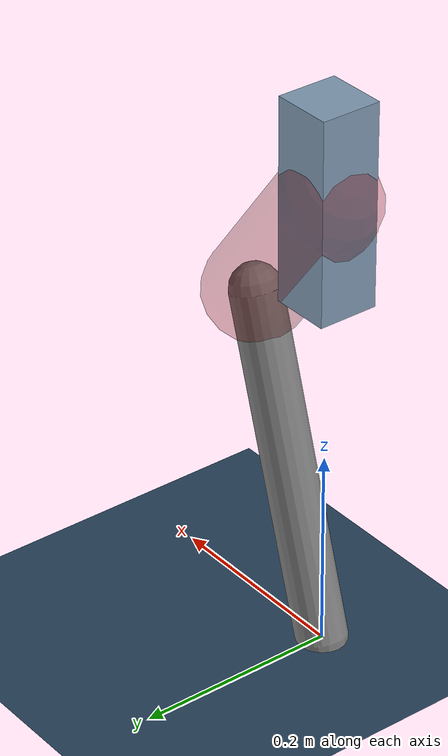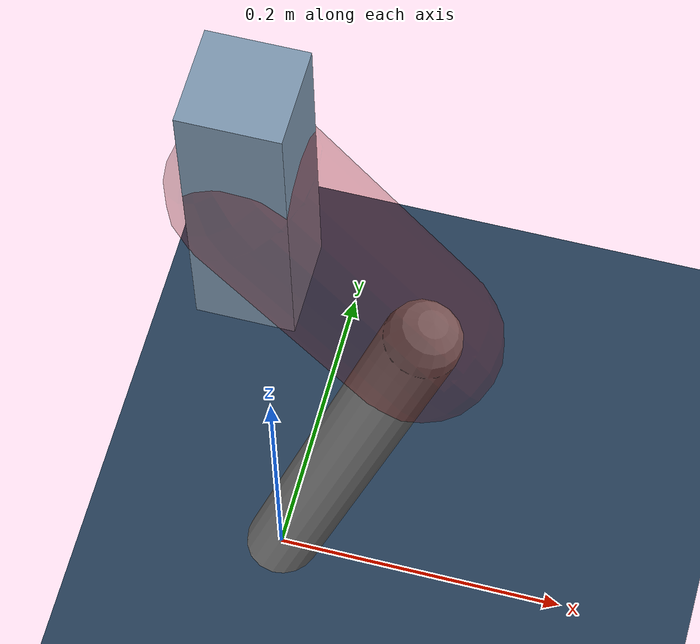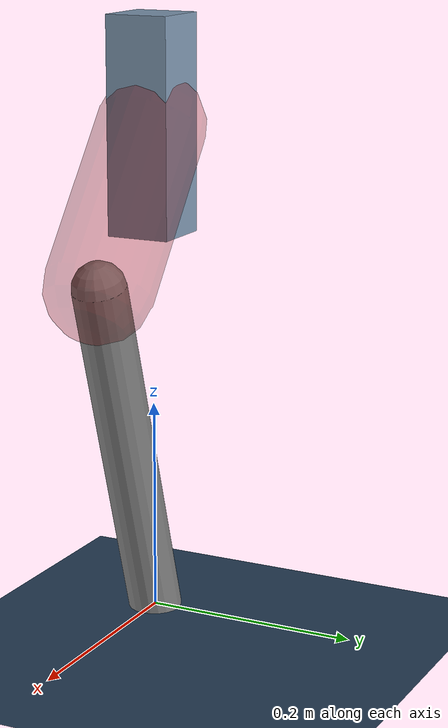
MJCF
<mujoco model="Hopper2D">
	<compiler inertiafromgeom="true" angle="radian" />
	<option timestep="0.001" integrator="implicit" cone="elliptic" solver="Newton" tolerance="1e-10" />

	<default>
		<geom contype="1" conaffinity="1" condim="3" friction="2 0.005 0.0001" solref="0.005 1" />
		<joint limited="true" damping="0.1" />
	</default>

	<asset>
		<texture name="skybox" type="skybox" builtin="gradient" rgb1=".4 .6 .8" rgb2="0 0 0" width="800" height="800" />
		<texture name="grid" type="2d" builtin="checker" rgb1=".1 .2 .3" rgb2=".2 .3 .4" width="300" height="300" mark="edge" markrgb=".2 .3 .4" />
		<material name="ground" texture="grid" texrepeat="1 1" texuniform="true" reflectance="0.1" />
		<material name="leg" rgba="0.5 0.6 0.7 1" />
	</asset>

	<worldbody>

		<geom name="floor" type="plane" size="5 5 0.25" material="ground" />

		<light directional="false" diffuse="0.8 0.8 0.8" specular="0.3 0.3 0.3" pos="0 0 2" dir="0 0 -1" />
		<light mode="targetbodycom" target="base" directional="false" diffuse="0.8 0.8 0.8" specular="0.3 0.3 0.3" pos="0 0 2" dir="0 0 -1" />

		<camera name="fixed" pos="0 -2 1" xyaxes="1 0 0 0 0 1" />
		<camera name="tracking" mode="trackcom" pos="0 -3 1" />

		<body name="root" pos="0 0 0.4621941214288748">
			<joint name="slide_x" type="slide" axis="1 0 0" range="-100 100" />
			<joint name="slide_z" type="slide" axis="0 0 1" range="0 10" />

			<body name="base" pos="0 0 0">
				<geom name="torso" type="box" size="0.03 0.03 0.1" mass="2.049" material="leg" />

				<body name="link1" pos="0 0 0" euler="0 0.9209498711381877 0">
					<joint type="hinge" axis="0 -1 0" pos="0 0 0" name="hinge1" limited="true" range="-3.14 3.14" stiffness="0" damping="0.1" />
					<geom name="thigh" type="capsule" fromto="0 0 0 0.16524926765109285 0 0" size="0.05" rgba="0.5 0 0 0.3" mass="0.6448982423626228" />

					<body name="link2" pos="0.16524926765109285 0 0" euler="0 0.9435173606391881 0">
						<joint type="hinge" axis="0 -1 0" pos="0 0 0" name="hinge2" limited="true" range="-3.14 3.14" stiffness="0" damping="0.1" />
						<geom name="shank" type="capsule" fromto="0 0 0 0.34541448517711343 0 0" size="0.025" mass="0.5202315881416908" />

					</body>
				</body>
			</body>
		</body>
	</worldbody>

	<actuator>
		<motor name="torque1" joint="hinge1" ctrlrange="-66.09251349622525 66.09251349622525" ctrllimited="true" gear="1" />
		<motor name="torque2" joint="hinge2" ctrlrange="-29.051623857078916 29.051623857078916" ctrllimited="true" gear="1" />
	</actuator>
</mujoco>
